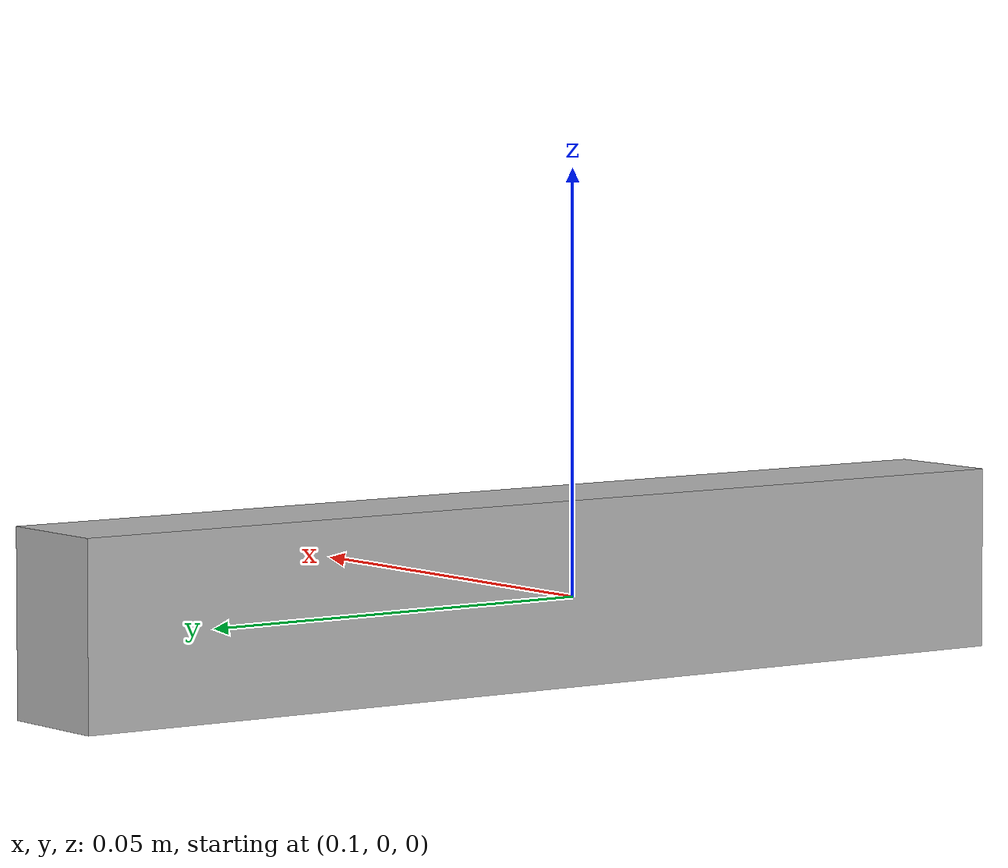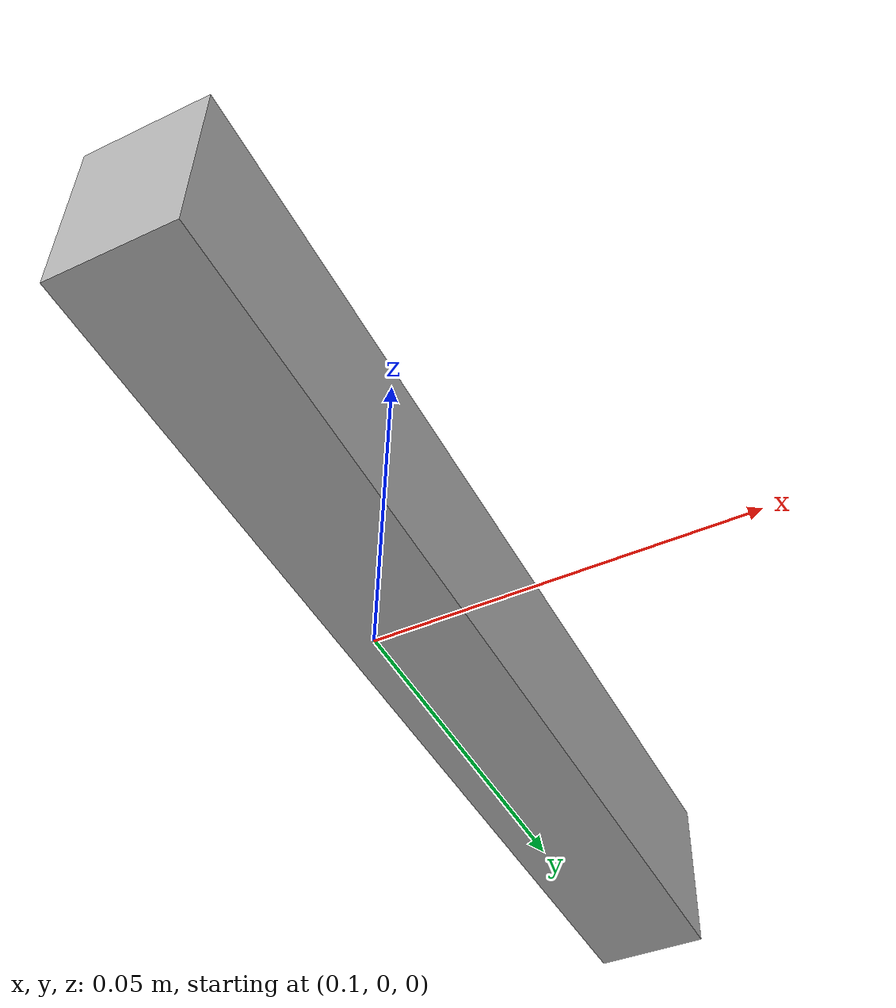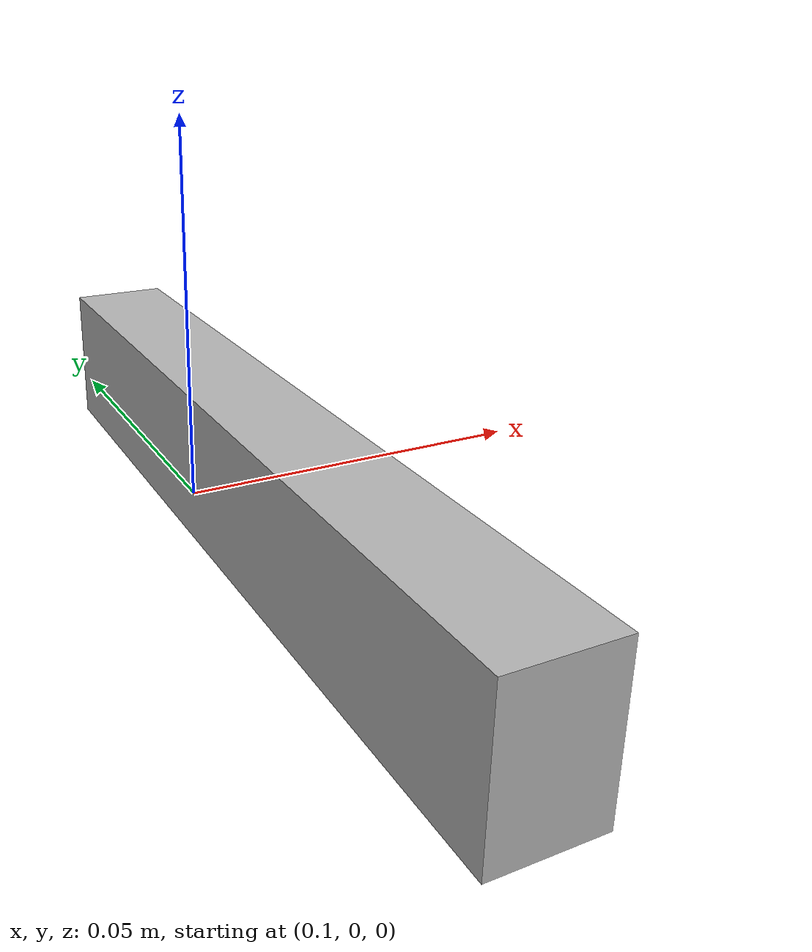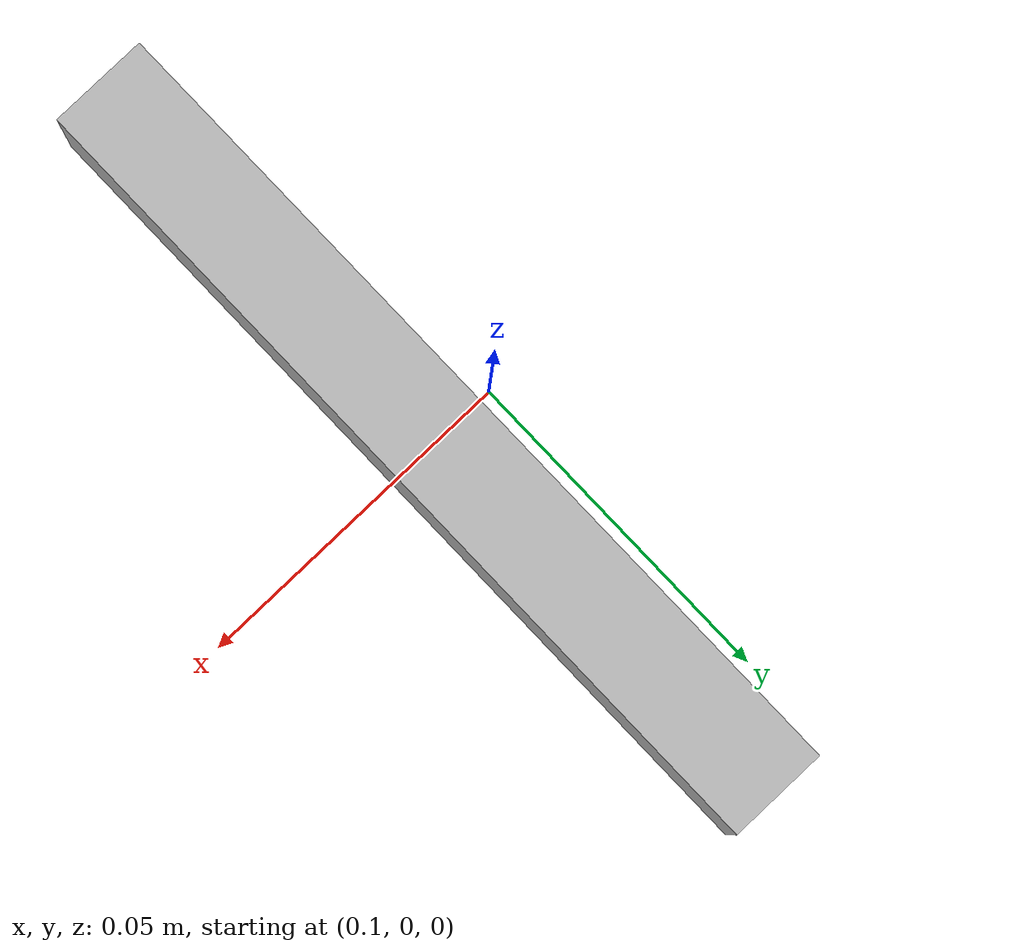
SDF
<!-- DO NOT EDIT: Generated from iris.sdf.jinja -->
<sdf version='1.6'>
  <model name='my_camera'>
    <link name='camera_link'>
      <pose>0.11 0 0 0 0 0</pose>
      <inertial>
        <pose>0 0 0 0 0 0</pose>
        <mass>0.035</mass>
        <inertia>
          <ixx>0.001</ixx>
          <ixy>0</ixy>
          <ixz>0</ixz>
          <iyy>0.001</iyy>
          <iyz>0</iyz>
          <izz>0.001</izz>
        </inertia>
      </inertial>
      <collision name='camera_link_collision'>
        <pose>0 0 0 0 0 0</pose>
        <geometry>
          <box>
            <size>0.015 0.13 0.022</size>
          </box>
        </geometry>
        <surface>
          <contact>
            <ode/>
          </contact>
          <friction>
            <ode/>
          </friction>
        </surface>
      </collision>
      <visual name='camera_link_visual'>
        <pose>0 0 0 0 0 0</pose>
        <geometry>
          <box>
            <size>0.015 0.13 0.022</size>
          </box>
        </geometry>
      </visual>
      <sensor name='depth_camera' type='depth'>
        <visualize>1</visualize>
        <update_rate>30</update_rate>
        <camera name='camera'>
          <horizontal_fov>1.0472</horizontal_fov>
          <image>
            <width>640</width>
            <height>480</height>
            <format>R8G8B8</format>
          </image>
          <clip>
            <near>0.05</near>
            <far>3</far>
          </clip>
        </camera>
        <plugin name='depth_camera_controller' filename='libgazebo_ros_camera.so'>
          <baseline>0.2</baseline>
          <alwaysOn>1</alwaysOn>
          <updateRate>0.0</updateRate>
          <frame_name>camera_depth_frame</frame_name>
          <pointCloudCutoff>0.5</pointCloudCutoff>
          <pointCloudCutoffMax>3.0</pointCloudCutoffMax>
          <distortionK1>0</distortionK1>
          <distortionK2>0</distortionK2>
          <distortionK3>0</distortionK3>
          <distortionT1>0</distortionT1>
          <distortionT2>0</distortionT2>
          <CxPrime>0</CxPrime>
          <Cx>0</Cx>
          <Cy>0</Cy>
          <focalLength>0</focalLength>
          <hackBaseline>0</hackBaseline>
        </plugin>
      </sensor>
    </link>
    <frame name='camera_depth_joint' attached_to='camera_link'>
      <pose>0 0 0 1.5708 -0 -1.5708</pose>
    </frame>
    <frame name='camera_depth_frame' attached_to='camera_depth_joint'/>
     <static>0</static>
  </model>
</sdf>
